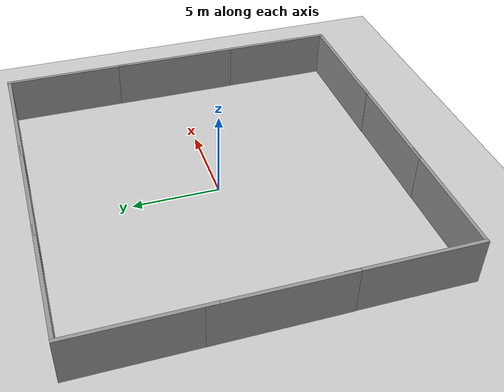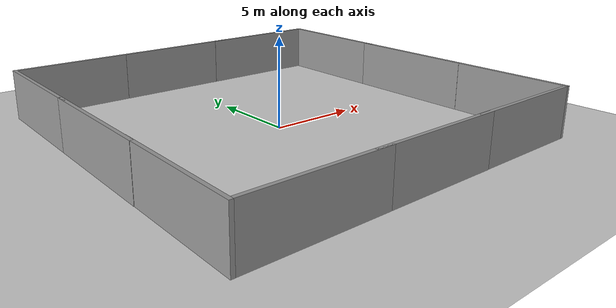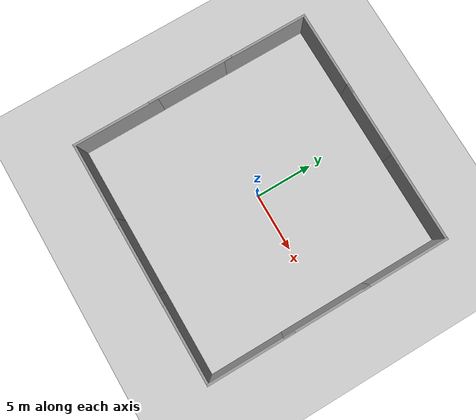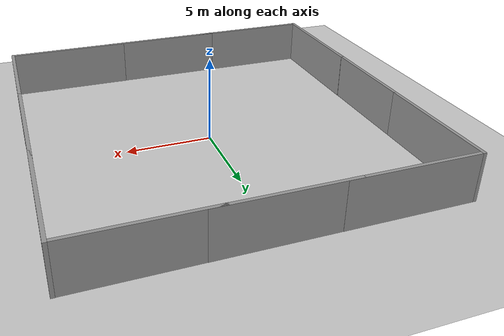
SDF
<sdf version="1.6">
 <world name="default">
  <light name="sun" type="directional">
   <pose>0 0 10 0 -0 0</pose>
   <diffuse>0.8 0.8 0.8 1</diffuse>
   <specular>0.2 0.2 0.2 1</specular>
   <attenuation>
    <range>1000</range>
    <constant>0.9</constant>
    <linear>0.01</linear>
    <quadratic>0.001</quadratic>
   </attenuation>
   <direction>-0.5 0.1 -0.9</direction>
  </light>
  <model name="ground_plane">
   <static>1</static>
   <link name="link">
    <collision name="collision">
     <geometry><plane><normal>0 0 1</normal><size>100 100</size></plane></geometry>
     <surface><friction><ode><mu>100</mu><mu2>50</mu2></ode></friction></surface>
    </collision>
    <visual name="visual">
     <cast_shadows>0</cast_shadows>
     <geometry><plane><normal>0 0 1</normal><size>100 100</size></plane></geometry>
     <material>
      <script><uri>file://media/materials/scripts/gazebo.material</uri><name>Gazebo/Grey</name></script>
     </material>
    </visual>
    <velocity_decay><linear>0</linear><angular>0</angular></velocity_decay>
   </link>
  </model>
  <physics name="default_physics" default="0" type="ode">
   <max_step_size>0.001</max_step_size>
   <real_time_factor>1</real_time_factor>
   <real_time_update_rate>1000</real_time_update_rate>
  </physics>
  <scene><ambient>0.4 0.4 0.4 1</ambient><background>0.7 0.7 0.7 1</background><shadows>1</shadows></scene>
  <spherical_coordinates>
   <surface_model>EARTH_WGS84</surface_model>
   <latitude_deg>0</latitude_deg>
   <longitude_deg>0</longitude_deg>
   <elevation>0</elevation>
   <heading_deg>0</heading_deg>
  </spherical_coordinates>
  <model name="grey_wall">
   <static>1</static>
   <link name="link">
    <pose>0 0 1.4 0 -0 0</pose>
    <collision name="collision"><geometry><box><size>7.5 0.2 2.8</size></box></geometry></collision>
    <visual name="visual">
     <cast_shadows>0</cast_shadows>
     <geometry><box><size>7.5 0.2 2.8</size></box></geometry>
     <material>
      <script>
       <uri>model://grey_wall/materials/scripts</uri>
       <uri>model://grey_wall/materials/textures</uri>
       <name>vrc/grey_wall</name>
      </script>
     </material>
    </visual>
    <velocity_decay><linear>0</linear><angular>0</angular></velocity_decay>
   </link>
   <pose>-0.026646 10.4384 0 0 -0 0</pose>
  </model>
  <model name="grey_wall_0">
   <static>1</static>
   <link name="link">
    <pose>0 0 1.4 0 -0 0</pose>
    <collision name="collision"><geometry><box><size>7.5 0.2 2.8</size></box></geometry></collision>
    <visual name="visual">
     <cast_shadows>0</cast_shadows>
     <geometry><box><size>7.5 0.2 2.8</size></box></geometry>
     <material>
      <script>
       <uri>model://grey_wall/materials/scripts</uri>
       <uri>model://grey_wall/materials/textures</uri>
       <name>vrc/grey_wall</name>
      </script>
     </material>
    </visual>
    <velocity_decay><linear>0</linear><angular>0</angular></velocity_decay>
   </link>
   <pose>0.017354 -10.3174 0 0 -0 0</pose>
  </model>
  <model name="grey_wall_3">
   <static>1</static>
   <link name="link">
    <pose>0 0 1.4 0 -0 0</pose>
    <collision name="collision"><geometry><box><size>7.5 0.2 2.8</size></box></geometry></collision>
    <visual name="visual">
     <cast_shadows>0</cast_shadows>
     <geometry><box><size>7.5 0.2 2.8</size></box></geometry>
     <material>
      <script>
       <uri>model://grey_wall/materials/scripts</uri>
       <uri>model://grey_wall/materials/textures</uri>
       <name>vrc/grey_wall</name>
      </script>
     </material>
    </visual>
    <velocity_decay><linear>0</linear><angular>0</angular></velocity_decay>
   </link>
   <pose>10.3251 6.79149 0.00212 0 0 -1.57102</pose>
  </model>
  <model name="grey_wall_4">
   <static>1</static>
   <link name="link">
    <pose>0 0 1.4 0 -0 0</pose>
    <collision name="collision"><geometry><box><size>7.5 0.2 2.8</size></box></geometry></collision>
    <visual name="visual">
     <cast_shadows>0</cast_shadows>
     <geometry><box><size>7.5 0.2 2.8</size></box></geometry>
     <material>
      <script>
       <uri>model://grey_wall/materials/scripts</uri>
       <uri>model://grey_wall/materials/textures</uri>
       <name>vrc/grey_wall</name>
      </script>
     </material>
    </visual>
    <velocity_decay><linear>0</linear><angular>0</angular></velocity_decay>
   </link>
   <pose>6.59906 -10.3029 0 0 -0 0</pose>
  </model>
  <model name="grey_wall_6">
   <static>1</static>
   <link name="link">
    <pose>0 0 1.4 0 -0 0</pose>
    <collision name="collision"><geometry><box><size>7.5 0.2 2.8</size></box></geometry></collision>
    <visual name="visual">
     <cast_shadows>0</cast_shadows>
     <geometry><box><size>7.5 0.2 2.8</size></box></geometry>
     <material>
      <script>
       <uri>model://grey_wall/materials/scripts</uri>
       <uri>model://grey_wall/materials/textures</uri>
       <name>vrc/grey_wall</name>
      </script>
     </material>
    </visual>
    <velocity_decay><linear>0</linear><angular>0</angular></velocity_decay>
   </link>
   <pose>6.5162 10.4288 0 0 -0 0</pose>
  </model>
  <gravity>0 0 -9.8</gravity>
  <magnetic_field>6e-06 2.3e-05 -4.2e-05</magnetic_field>
  <atmosphere type="adiabatic"/>
  <model name="grey_wall_clone">
   <static>1</static>
   <link name="link">
    <pose>0 0 1.4 0 -0 0</pose>
    <collision name="collision"><geometry><box><size>7.5 0.2 2.8</size></box></geometry></collision>
    <visual name="visual">
     <cast_shadows>0</cast_shadows>
     <geometry><box><size>7.5 0.2 2.8</size></box></geometry>
     <material>
      <script>
       <uri>model://grey_wall/materials/scripts</uri>
       <uri>model://grey_wall/materials/textures</uri>
       <name>vrc/grey_wall</name>
      </script>
     </material>
    </visual>
    <velocity_decay><linear>0</linear><angular>0</angular></velocity_decay>
   </link>
   <pose>-6.68265 10.445 0 0 -0 0</pose>
  </model>
  <model name="grey_wall_0_clone">
   <static>1</static>
   <link name="link">
    <pose>0 0 1.4 0 -0 0</pose>
    <collision name="collision"><geometry><box><size>7.5 0.2 2.8</size></box></geometry></collision>
    <visual name="visual">
     <cast_shadows>0</cast_shadows>
     <geometry><box><size>7.5 0.2 2.8</size></box></geometry>
     <material>
      <script>
       <uri>model://grey_wall/materials/scripts</uri>
       <uri>model://grey_wall/materials/textures</uri>
       <name>vrc/grey_wall</name>
      </script>
     </material>
    </visual>
    <velocity_decay><linear>0</linear><angular>0</angular></velocity_decay>
   </link>
   <pose>-6.52499 -10.3232 0 0 -0 0</pose>
  </model>
  <model name="grey_wall_3_clone">
   <static>1</static>
   <link name="link">
    <pose>0 0 1.4 0 -0 0</pose>
    <collision name="collision"><geometry><box><size>7.5 0.2 2.8</size></box></geometry></collision>
    <visual name="visual">
     <cast_shadows>0</cast_shadows>
     <geometry><box><size>7.5 0.2 2.8</size></box></geometry>
     <material>
      <script>
       <uri>model://grey_wall/materials/scripts</uri>
       <uri>model://grey_wall/materials/textures</uri>
       <name>vrc/grey_wall</name>
      </script>
     </material>
    </visual>
    <velocity_decay><linear>0</linear><angular>0</angular></velocity_decay>
   </link>
   <pose>10.3152 -0.142719 0.00212 0 0 -1.57102</pose>
  </model>
  <model name="grey_wall_3_clone_0">
   <static>1</static>
   <link name="link">
    <pose>0 0 1.4 0 -0 0</pose>
    <collision name="collision"><geometry><box><size>7.5 0.2 2.8</size></box></geometry></collision>
    <visual name="visual">
     <cast_shadows>0</cast_shadows>
     <geometry><box><size>7.5 0.2 2.8</size></box></geometry>
     <material>
      <script>
       <uri>model://grey_wall/materials/scripts</uri>
       <uri>model://grey_wall/materials/textures</uri>
       <name>vrc/grey_wall</name>
      </script>
     </material>
    </visual>
    <velocity_decay><linear>0</linear><angular>0</angular></velocity_decay>
   </link>
   <pose>10.3234 -6.65463 0.00212 0 0 -1.57102</pose>
  </model>
  <model name="grey_wall_3_clone_1">
   <static>1</static>
   <link name="link">
    <pose>0 0 1.4 0 -0 0</pose>
    <collision name="collision"><geometry><box><size>7.5 0.2 2.8</size></box></geometry></collision>
    <visual name="visual">
     <cast_shadows>0</cast_shadows>
     <geometry><box><size>7.5 0.2 2.8</size></box></geometry>
     <material>
      <script>
       <uri>model://grey_wall/materials/scripts</uri>
       <uri>model://grey_wall/materials/textures</uri>
       <name>vrc/grey_wall</name>
      </script>
     </material>
    </visual>
    <velocity_decay><linear>0</linear><angular>0</angular></velocity_decay>
   </link>
   <pose>-10.3545 -6.68168 0.00212 0 0 -1.57102</pose>
  </model>
  <model name="grey_wall_3_clone_2">
   <static>1</static>
   <link name="link">
    <pose>0 0 1.4 0 -0 0</pose>
    <collision name="collision"><geometry><box><size>7.5 0.2 2.8</size></box></geometry></collision>
    <visual name="visual">
     <cast_shadows>0</cast_shadows>
     <geometry><box><size>7.5 0.2 2.8</size></box></geometry>
     <material>
      <script>
       <uri>model://grey_wall/materials/scripts</uri>
       <uri>model://grey_wall/materials/textures</uri>
       <name>vrc/grey_wall</name>
      </script>
     </material>
    </visual>
    <velocity_decay><linear>0</linear><angular>0</angular></velocity_decay>
   </link>
   <pose>-10.3675 0.009151 0.00212 0 0 -1.57102</pose>
  </model>
  <model name="grey_wall_3_clone_3">
   <static>1</static>
   <link name="link">
    <pose>0 0 1.4 0 -0 0</pose>
    <collision name="collision"><geometry><box><size>7.5 0.2 2.8</size></box></geometry></collision>
    <visual name="visual">
     <cast_shadows>0</cast_shadows>
     <geometry><box><size>7.5 0.2 2.8</size></box></geometry>
     <material>
      <script>
       <uri>model://grey_wall/materials/scripts</uri>
       <uri>model://grey_wall/materials/textures</uri>
       <name>vrc/grey_wall</name>
      </script>
     </material>
    </visual>
    <velocity_decay><linear>0</linear><angular>0</angular></velocity_decay>
   </link>
   <pose>-10.3635 6.79664 0.00212 0 0 -1.57102</pose>
  </model>
 </world>
</sdf>
